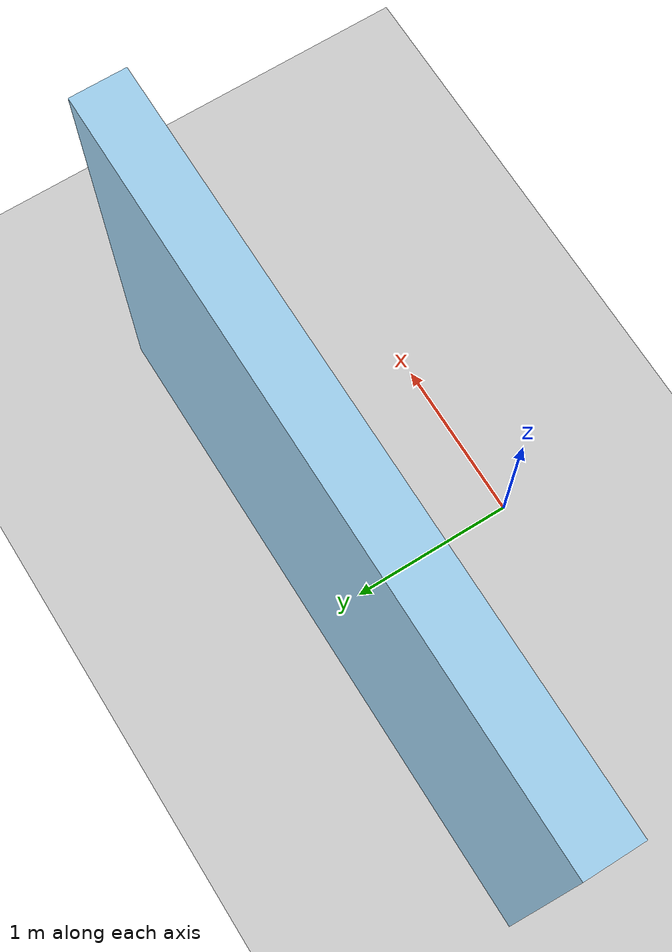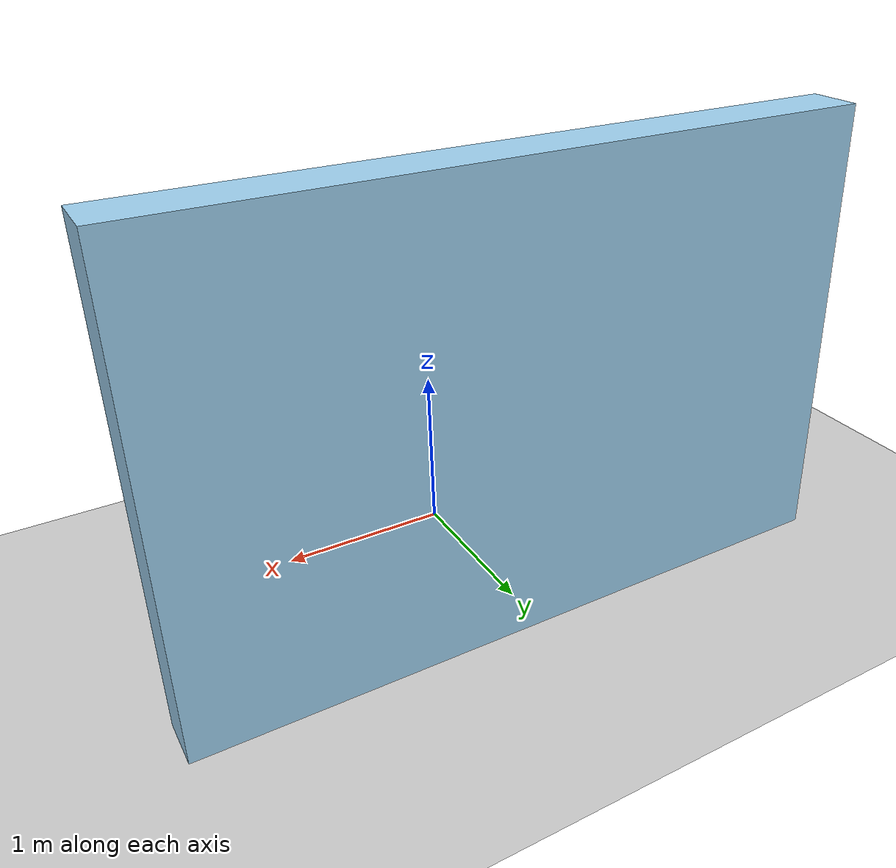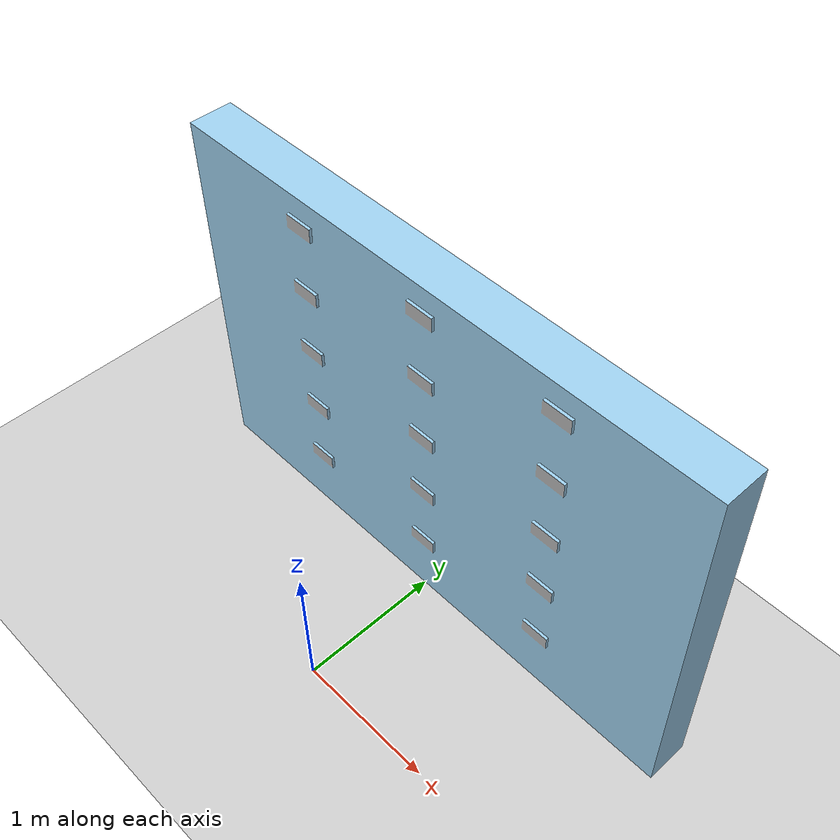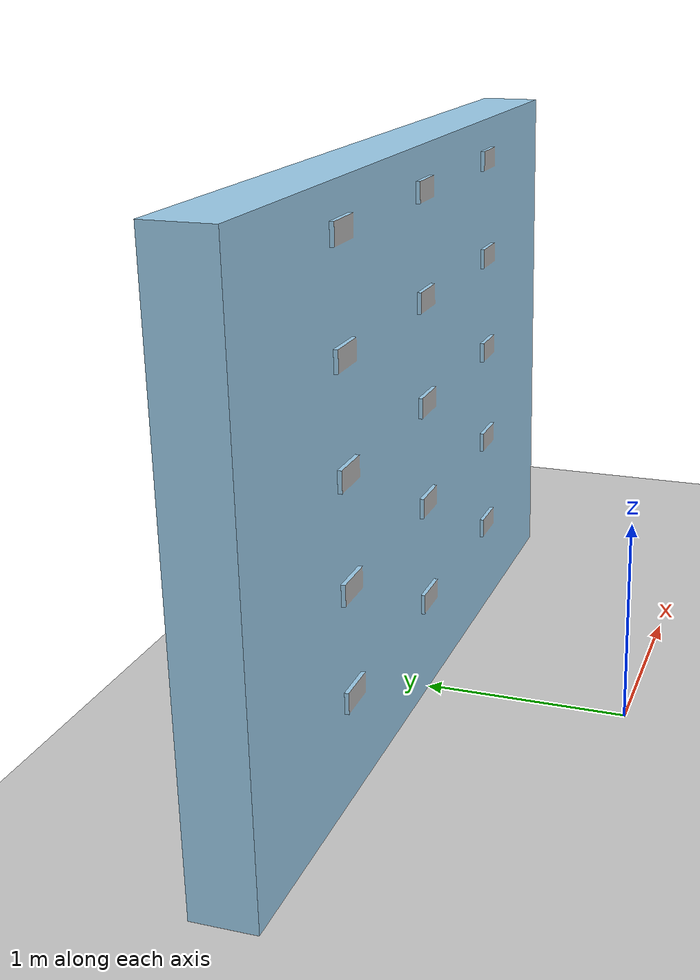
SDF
<?xml version="1.0"?>
<sdf version="1.4">
  <world name="default">
    <include>
      <uri>model://ground_plane</uri>
    </include>

    <include>
      <uri>model://sun</uri>
    </include>

<!-- Environment Mesh -->
    <model name="number_plate_wall">
      <pose>0 0 0 0 0 0</pose>
      <static>true</static>
      <link name="number_plate_wall">
        <visual name="visual">
          <geometry>
            <mesh><uri>model://test_environments/number_plate_wall.dae</uri></mesh>
          </geometry>
        </visual>
        <collision name="collision">
          <geometry>
            <mesh><uri>model://test_environments/number_plate_wall.dae</uri></mesh>
          </geometry>
        </collision>
      </link>
    </model>
  </world>
</sdf>
